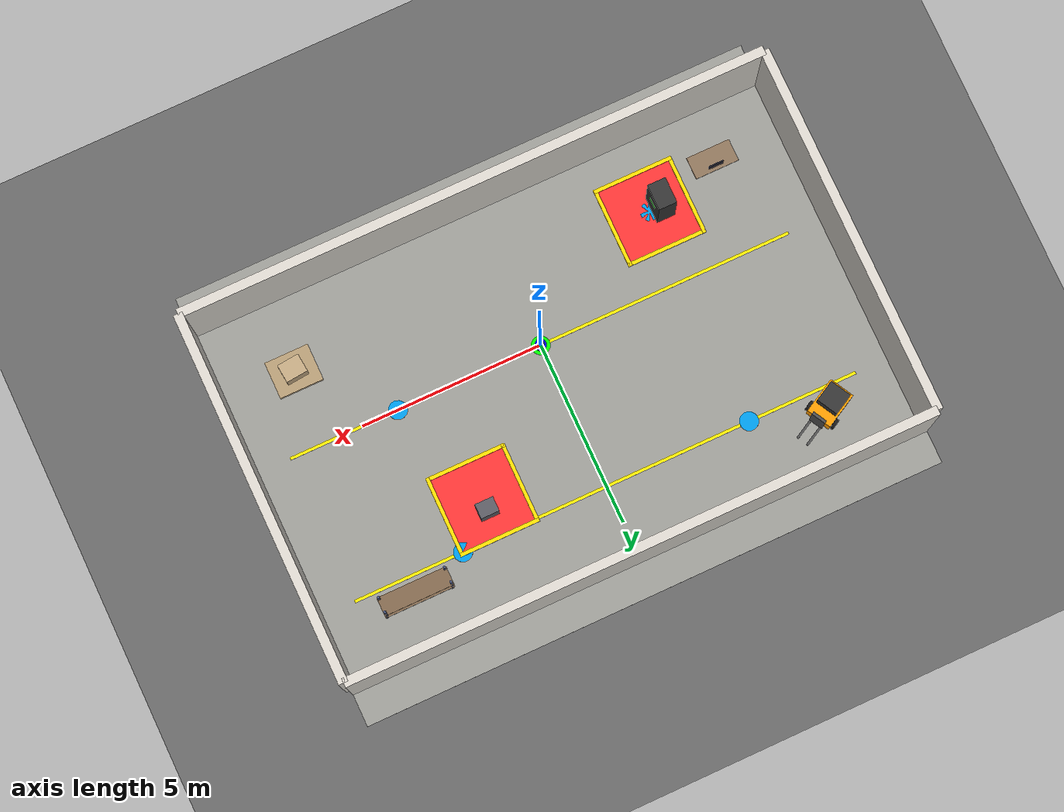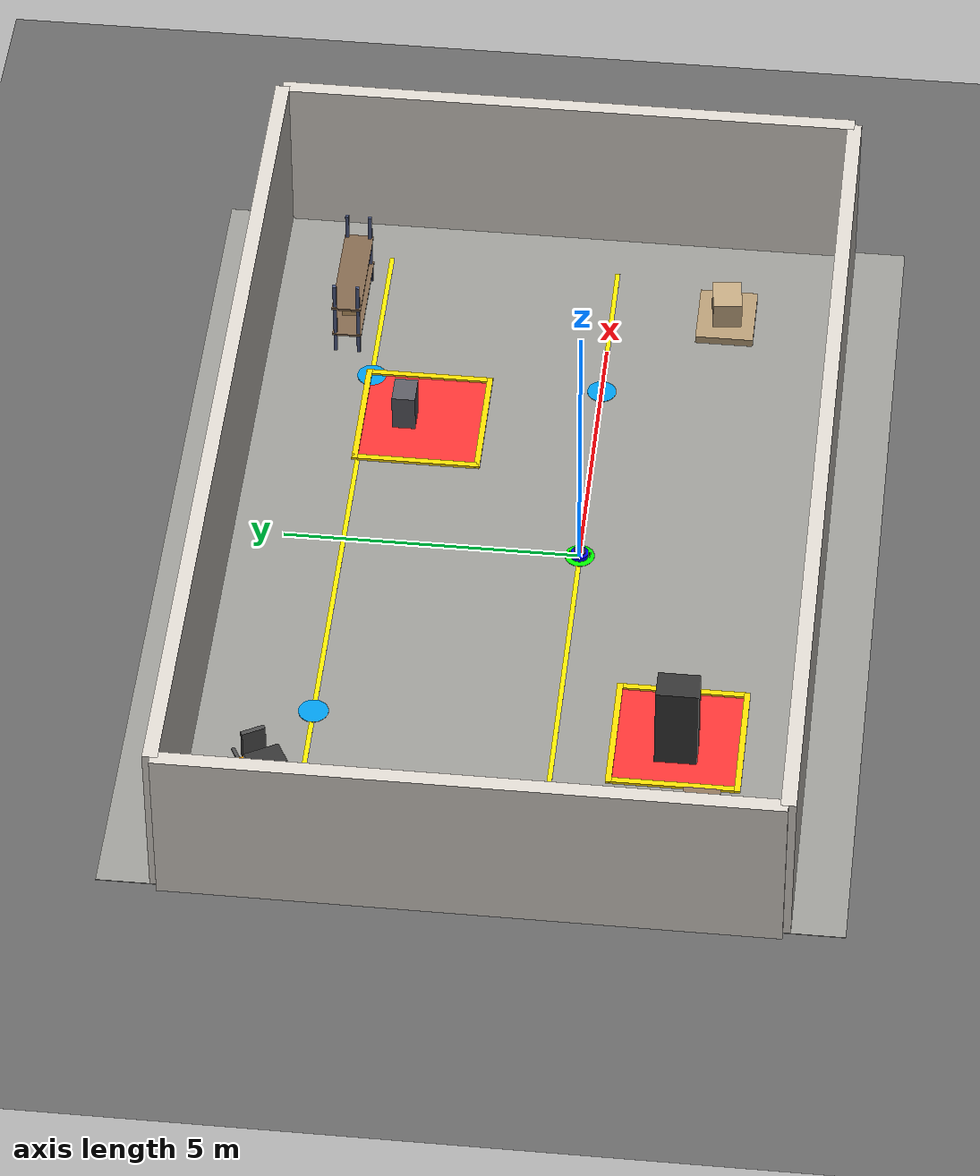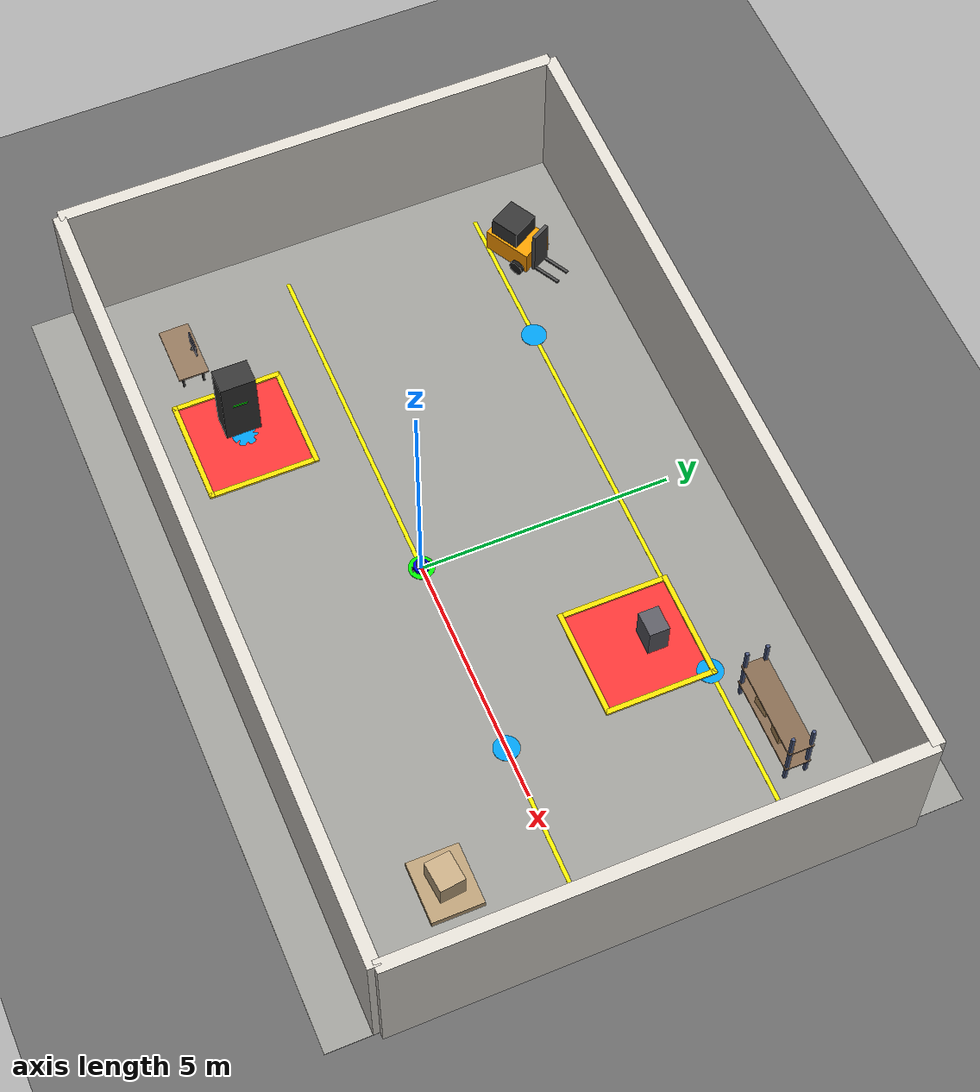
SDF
<?xml version="1.0" ?>
<sdf version="1.8">
  <world name="patrol_world">

    <physics name="1ms" type="ignored">
      <max_step_size>0.001</max_step_size>
      <real_time_factor>1.0</real_time_factor>
    </physics>

    <plugin filename="gz-sim-physics-system" name="gz::sim::systems::Physics"/>
    <plugin filename="gz-sim-user-commands-system" name="gz::sim::systems::UserCommands"/>
    <plugin filename="gz-sim-scene-broadcaster-system" name="gz::sim::systems::SceneBroadcaster"/>

    <!-- Aydınlatma -->
    <light type="directional" name="sun">
      <cast_shadows>true</cast_shadows>
      <pose>0 0 15 0 0 0</pose>
      <diffuse>0.9 0.9 0.85 1</diffuse>
      <specular>0.3 0.3 0.3 1</specular>
      <direction>-0.4 0.2 -0.9</direction>
    </light>

    <light type="point" name="light1">
      <pose>0 2 3.5 0 0 0</pose>
      <diffuse>0.8 0.8 0.7 1</diffuse>
      <attenuation><range>15</range><constant>0.3</constant><linear>0.05</linear></attenuation>
    </light>

    <light type="point" name="light2">
      <pose>4 2 3.5 0 0 0</pose>
      <diffuse>0.8 0.8 0.7 1</diffuse>
      <attenuation><range>15</range><constant>0.3</constant><linear>0.05</linear></attenuation>
    </light>

    <!-- Zemin - Beton -->
    <model name="ground">
      <static>true</static>
      <link name="link">
        <collision name="c"><geometry><plane><normal>0 0 1</normal><size>100 100</size></plane></geometry></collision>
        <visual name="v"><geometry><plane><normal>0 0 1</normal><size>100 100</size></plane></geometry>
          <material><ambient>0.3 0.3 0.3 1</ambient><diffuse>0.4 0.4 0.4 1</diffuse></material></visual>
      </link>
    </model>

    <!-- Depo Zemini -->
    <model name="floor">
      <static>true</static>
      <pose>0 1 0.005 0 0 0</pose>
      <link name="link">
        <visual name="v"><geometry><box><size>16 12 0.01</size></box></geometry>
          <material><ambient>0.5 0.5 0.48 1</ambient><diffuse>0.6 0.6 0.58 1</diffuse></material></visual>
      </link>
    </model>

    <!-- Sarı Zemin Çizgileri -->
    <model name="line1">
      <static>true</static>
      <pose>0 0 0.01 0 0 0</pose>
      <link name="l"><visual name="v"><geometry><box><size>14 0.08 0.01</size></box></geometry>
        <material><ambient>0.9 0.8 0 1</ambient><diffuse>1 0.9 0 1</diffuse></material></visual></link>
    </model>
    <model name="line2">
      <static>true</static>
      <pose>0 4 0.01 0 0 0</pose>
      <link name="l"><visual name="v"><geometry><box><size>14 0.08 0.01</size></box></geometry>
        <material><ambient>0.9 0.8 0 1</ambient><diffuse>1 0.9 0 1</diffuse></material></visual></link>
    </model>

    <!-- Ana Duvarlar -->
    <model name="wall_n">
      <static>true</static>
      <pose>0 6 1.5 0 0 0</pose>
      <link name="link">
        <collision name="c"><geometry><box><size>16 0.25 3</size></box></geometry></collision>
        <visual name="v"><geometry><box><size>16 0.25 3</size></box></geometry>
          <material><ambient>0.75 0.73 0.7 1</ambient><diffuse>0.85 0.83 0.8 1</diffuse></material></visual>
      </link>
    </model>
    <model name="wall_s">
      <static>true</static>
      <pose>0 -4 1.5 0 0 0</pose>
      <link name="link">
        <collision name="c"><geometry><box><size>16 0.25 3</size></box></geometry></collision>
        <visual name="v"><geometry><box><size>16 0.25 3</size></box></geometry>
          <material><ambient>0.75 0.73 0.7 1</ambient><diffuse>0.85 0.83 0.8 1</diffuse></material></visual>
      </link>
    </model>
    <model name="wall_e">
      <static>true</static>
      <pose>8 1 1.5 0 0 0</pose>
      <link name="link">
        <collision name="c"><geometry><box><size>0.25 10 3</size></box></geometry></collision>
        <visual name="v"><geometry><box><size>0.25 10 3</size></box></geometry>
          <material><ambient>0.75 0.73 0.7 1</ambient><diffuse>0.85 0.83 0.8 1</diffuse></material></visual>
      </link>
    </model>
    <model name="wall_w">
      <static>true</static>
      <pose>-8 1 1.5 0 0 0</pose>
      <link name="link">
        <collision name="c"><geometry><box><size>0.25 10 3</size></box></geometry></collision>
        <visual name="v"><geometry><box><size>0.25 10 3</size></box></geometry>
          <material><ambient>0.75 0.73 0.7 1</ambient><diffuse>0.85 0.83 0.8 1</diffuse></material></visual>
      </link>
    </model>

    <!-- Depo Rafları -->
    <model name="shelf1">
      <static>true</static>
      <pose>5.5 4.5 0 0 0 0</pose>
      <link name="link">
        <collision name="c"><pose>0 0 0.75 0 0 0</pose><geometry><box><size>2 0.5 1.5</size></box></geometry></collision>
        <visual name="frame1"><pose>-0.9 -0.2 0.75 0 0 0</pose><geometry><box><size>0.06 0.06 1.5</size></box></geometry>
          <material><ambient>0.3 0.35 0.5 1</ambient></material></visual>
        <visual name="frame2"><pose>0.9 -0.2 0.75 0 0 0</pose><geometry><box><size>0.06 0.06 1.5</size></box></geometry>
          <material><ambient>0.3 0.35 0.5 1</ambient></material></visual>
        <visual name="frame3"><pose>-0.9 0.2 0.75 0 0 0</pose><geometry><box><size>0.06 0.06 1.5</size></box></geometry>
          <material><ambient>0.3 0.35 0.5 1</ambient></material></visual>
        <visual name="frame4"><pose>0.9 0.2 0.75 0 0 0</pose><geometry><box><size>0.06 0.06 1.5</size></box></geometry>
          <material><ambient>0.3 0.35 0.5 1</ambient></material></visual>
        <visual name="plank1"><pose>0 0 0.4 0 0 0</pose><geometry><box><size>1.9 0.5 0.04</size></box></geometry>
          <material><ambient>0.5 0.4 0.3 1</ambient></material></visual>
        <visual name="plank2"><pose>0 0 1.0 0 0 0</pose><geometry><box><size>1.9 0.5 0.04</size></box></geometry>
          <material><ambient>0.5 0.4 0.3 1</ambient></material></visual>
      </link>
    </model>

    <!-- Kutular raf üstünde -->
    <model name="box1">
      <static>true</static>
      <pose>5.2 4.5 0.55 0 0 0.1</pose>
      <link name="l"><visual name="v"><geometry><box><size>0.35 0.3 0.25</size></box></geometry>
        <material><ambient>0.6 0.45 0.25 1</ambient><diffuse>0.75 0.6 0.4 1</diffuse></material></visual></link>
    </model>
    <model name="box2">
      <static>true</static>
      <pose>5.8 4.5 0.55 0 0 -0.05</pose>
      <link name="l"><visual name="v"><geometry><box><size>0.3 0.3 0.25</size></box></geometry>
        <material><ambient>0.55 0.4 0.2 1</ambient><diffuse>0.7 0.55 0.35 1</diffuse></material></visual></link>
    </model>

    <!-- Forklift -->
    <model name="forklift">
      <static>true</static>
      <pose>-6 4.5 0 0 0 0.5</pose>
      <link name="link">
        <collision name="c"><pose>0 0 0.5 0 0 0</pose><geometry><box><size>1.5 0.8 1</size></box></geometry></collision>
        <visual name="body"><pose>0 0 0.35 0 0 0</pose><geometry><box><size>1.0 0.7 0.5</size></box></geometry>
          <material><ambient>0.9 0.5 0 1</ambient><diffuse>1 0.6 0 1</diffuse></material></visual>
        <visual name="cabin"><pose>-0.1 0 0.75 0 0 0</pose><geometry><box><size>0.6 0.6 0.5</size></box></geometry>
          <material><ambient>0.2 0.2 0.2 1</ambient></material></visual>
        <visual name="mast"><pose>0.55 0 0.6 0 0 0</pose><geometry><box><size>0.08 0.4 1.0</size></box></geometry>
          <material><ambient>0.3 0.3 0.3 1</ambient></material></visual>
        <visual name="fork1"><pose>0.85 -0.15 0.12 0 0 0</pose><geometry><box><size>0.6 0.06 0.04</size></box></geometry>
          <material><ambient>0.3 0.3 0.3 1</ambient></material></visual>
        <visual name="fork2"><pose>0.85 0.15 0.12 0 0 0</pose><geometry><box><size>0.6 0.06 0.04</size></box></geometry>
          <material><ambient>0.3 0.3 0.3 1</ambient></material></visual>
        <visual name="w1"><pose>0.3 0.4 0.15 1.57 0 0</pose><geometry><cylinder><radius>0.15</radius><length>0.08</length></cylinder></geometry>
          <material><ambient>0.1 0.1 0.1 1</ambient></material></visual>
        <visual name="w2"><pose>0.3 -0.4 0.15 1.57 0 0</pose><geometry><cylinder><radius>0.15</radius><length>0.08</length></cylinder></geometry>
          <material><ambient>0.1 0.1 0.1 1</ambient></material></visual>
      </link>
    </model>

    <!-- Paletler ve Kutular -->
    <model name="pallet1">
      <static>true</static>
      <pose>6 -2 0.08 0 0 0</pose>
      <link name="l">
        <collision name="c"><geometry><box><size>1.2 1 0.15</size></box></geometry></collision>
        <visual name="v"><geometry><box><size>1.2 1 0.15</size></box></geometry>
          <material><ambient>0.55 0.45 0.3 1</ambient><diffuse>0.7 0.6 0.45 1</diffuse></material></visual>
      </link>
    </model>
    <model name="crate1">
      <static>true</static>
      <pose>6 -2 0.4 0 0 0.1</pose>
      <link name="l">
        <collision name="c"><geometry><box><size>0.6 0.5 0.5</size></box></geometry></collision>
        <visual name="v"><geometry><box><size>0.6 0.5 0.5</size></box></geometry>
          <material><ambient>0.6 0.5 0.35 1</ambient><diffuse>0.75 0.65 0.5 1</diffuse></material></visual>
      </link>
    </model>

    <!-- Güvenlik Masası -->
    <model name="desk">
      <static>true</static>
      <pose>-6 -2.5 0 0 0 0</pose>
      <link name="link">
        <collision name="c"><pose>0 0 0.35 0 0 0</pose><geometry><box><size>1.2 0.6 0.7</size></box></geometry></collision>
        <visual name="top"><pose>0 0 0.38 0 0 0</pose><geometry><box><size>1.2 0.6 0.04</size></box></geometry>
          <material><ambient>0.4 0.3 0.2 1</ambient><diffuse>0.55 0.45 0.35 1</diffuse></material></visual>
        <visual name="leg1"><pose>-0.5 -0.2 0.18 0 0 0</pose><geometry><box><size>0.04 0.04 0.36</size></box></geometry>
          <material><ambient>0.25 0.25 0.25 1</ambient></material></visual>
        <visual name="leg2"><pose>0.5 -0.2 0.18 0 0 0</pose><geometry><box><size>0.04 0.04 0.36</size></box></geometry>
          <material><ambient>0.25 0.25 0.25 1</ambient></material></visual>
        <visual name="leg3"><pose>-0.5 0.2 0.18 0 0 0</pose><geometry><box><size>0.04 0.04 0.36</size></box></geometry>
          <material><ambient>0.25 0.25 0.25 1</ambient></material></visual>
        <visual name="leg4"><pose>0.5 0.2 0.18 0 0 0</pose><geometry><box><size>0.04 0.04 0.36</size></box></geometry>
          <material><ambient>0.25 0.25 0.25 1</ambient></material></visual>
      </link>
    </model>

    <!-- Monitör -->
    <model name="monitor">
      <static>true</static>
      <pose>-6 -2.3 0.55 0 0 0</pose>
      <link name="l">
        <visual name="screen"><geometry><box><size>0.4 0.03 0.28</size></box></geometry>
          <material><ambient>0.1 0.1 0.1 1</ambient><diffuse>0.15 0.15 0.2 1</diffuse></material></visual>
        <visual name="stand"><pose>0 -0.02 -0.18 0 0 0</pose><geometry><cylinder><radius>0.04</radius><length>0.08</length></cylinder></geometry>
          <material><ambient>0.2 0.2 0.2 1</ambient></material></visual>
      </link>
    </model>

    <!-- YASAK BÖLGE A - Kasa Odası -->
    <model name="zone_a_floor">
      <static>true</static>
      <pose>3 3 0.01 0 0 0</pose>
      <link name="l"><visual name="v"><geometry><box><size>2 2 0.02</size></box></geometry>
        <material><ambient>0.9 0.1 0.1 1</ambient><diffuse>1 0.2 0.2 1</diffuse></material></visual></link>
    </model>
    <model name="zone_a_border1">
      <static>true</static>
      <pose>3 4.05 0.03 0 0 0</pose>
      <link name="l"><visual name="v"><geometry><box><size>2.2 0.1 0.06</size></box></geometry>
        <material><ambient>0.9 0.75 0 1</ambient><diffuse>1 0.85 0 1</diffuse></material></visual></link>
    </model>
    <model name="zone_a_border2">
      <static>true</static>
      <pose>3 1.95 0.03 0 0 0</pose>
      <link name="l"><visual name="v"><geometry><box><size>2.2 0.1 0.06</size></box></geometry>
        <material><ambient>0.9 0.75 0 1</ambient><diffuse>1 0.85 0 1</diffuse></material></visual></link>
    </model>
    <model name="zone_a_border3">
      <static>true</static>
      <pose>4.05 3 0.03 0 0 0</pose>
      <link name="l"><visual name="v"><geometry><box><size>0.1 2.2 0.06</size></box></geometry>
        <material><ambient>0.9 0.75 0 1</ambient><diffuse>1 0.85 0 1</diffuse></material></visual></link>
    </model>
    <model name="zone_a_border4">
      <static>true</static>
      <pose>1.95 3 0.03 0 0 0</pose>
      <link name="l"><visual name="v"><geometry><box><size>0.1 2.2 0.06</size></box></geometry>
        <material><ambient>0.9 0.75 0 1</ambient><diffuse>1 0.85 0 1</diffuse></material></visual></link>
    </model>

    <!-- Kasa -->
    <model name="safe">
      <static>true</static>
      <pose>3 3.3 0.35 0 0 0</pose>
      <link name="l">
        <collision name="c"><geometry><box><size>0.5 0.4 0.7</size></box></geometry></collision>
        <visual name="v"><geometry><box><size>0.5 0.4 0.7</size></box></geometry>
          <material><ambient>0.25 0.25 0.27 1</ambient><diffuse>0.35 0.35 0.38 1</diffuse><specular>0.4 0.4 0.4 1</specular></material></visual>
      </link>
    </model>

    <!-- YASAK BÖLGE B - Sunucu Odası -->
    <model name="zone_b_floor">
      <static>true</static>
      <pose>-4 -2 0.01 0 0 0</pose>
      <link name="l"><visual name="v"><geometry><box><size>2 2 0.02</size></box></geometry>
        <material><ambient>0.9 0.1 0.1 1</ambient><diffuse>1 0.2 0.2 1</diffuse></material></visual></link>
    </model>
    <model name="zone_b_border1">
      <static>true</static>
      <pose>-4 -0.95 0.03 0 0 0</pose>
      <link name="l"><visual name="v"><geometry><box><size>2.2 0.1 0.06</size></box></geometry>
        <material><ambient>0.9 0.75 0 1</ambient><diffuse>1 0.85 0 1</diffuse></material></visual></link>
    </model>
    <model name="zone_b_border2">
      <static>true</static>
      <pose>-4 -3.05 0.03 0 0 0</pose>
      <link name="l"><visual name="v"><geometry><box><size>2.2 0.1 0.06</size></box></geometry>
        <material><ambient>0.9 0.75 0 1</ambient><diffuse>1 0.85 0 1</diffuse></material></visual></link>
    </model>
    <model name="zone_b_border3">
      <static>true</static>
      <pose>-2.95 -2 0.03 0 0 0</pose>
      <link name="l"><visual name="v"><geometry><box><size>0.1 2.2 0.06</size></box></geometry>
        <material><ambient>0.9 0.75 0 1</ambient><diffuse>1 0.85 0 1</diffuse></material></visual></link>
    </model>
    <model name="zone_b_border4">
      <static>true</static>
      <pose>-5.05 -2 0.03 0 0 0</pose>
      <link name="l"><visual name="v"><geometry><box><size>0.1 2.2 0.06</size></box></geometry>
        <material><ambient>0.9 0.75 0 1</ambient><diffuse>1 0.85 0 1</diffuse></material></visual></link>
    </model>

    <!-- Server Rack -->
    <model name="server">
      <static>true</static>
      <pose>-4.3 -2 0.8 0 0 0</pose>
      <link name="l">
        <collision name="c"><geometry><box><size>0.5 0.7 1.6</size></box></geometry></collision>
        <visual name="v"><geometry><box><size>0.5 0.7 1.6</size></box></geometry>
          <material><ambient>0.15 0.15 0.15 1</ambient><diffuse>0.2 0.2 0.2 1</diffuse></material></visual>
        <visual name="led"><pose>0.26 0 0.2 0 0 0</pose><geometry><box><size>0.01 0.3 0.04</size></box></geometry>
          <material><ambient>0 0.8 0 1</ambient><diffuse>0 1 0 1</diffuse></material></visual>
      </link>
    </model>

    <!-- Waypoints -->
    <model name="wp1"><static>true</static><pose>0 0 0.01 0 0 0</pose>
      <link name="l"><visual name="v"><geometry><cylinder><radius>0.25</radius><length>0.02</length></cylinder></geometry>
        <material><ambient>0 0.8 0 1</ambient><diffuse>0 1 0 1</diffuse></material></visual></link></model>
    <model name="wp2"><static>true</static><pose>4 0 0.01 0 0 0</pose>
      <link name="l"><visual name="v"><geometry><cylinder><radius>0.25</radius><length>0.02</length></cylinder></geometry>
        <material><ambient>0 0.6 0.9 1</ambient></material></visual></link></model>
    <model name="wp3"><static>true</static><pose>4 4 0.01 0 0 0</pose>
      <link name="l"><visual name="v"><geometry><cylinder><radius>0.25</radius><length>0.02</length></cylinder></geometry>
        <material><ambient>0 0.6 0.9 1</ambient></material></visual></link></model>
    <model name="wp4"><static>true</static><pose>-4 4 0.01 0 0 0</pose>
      <link name="l"><visual name="v"><geometry><cylinder><radius>0.25</radius><length>0.02</length></cylinder></geometry>
        <material><ambient>0 0.6 0.9 1</ambient></material></visual></link></model>
    <model name="wp5"><static>true</static><pose>-4 -2 0.01 0 0 0</pose>
      <link name="l"><visual name="v"><geometry><cylinder><radius>0.25</radius><length>0.02</length></cylinder></geometry>
        <material><ambient>0 0.6 0.9 1</ambient></material></visual></link></model>

    <!-- ROBOT - Aynı kalacak -->
    <model name="patrol_robot">
      <pose>0 0 0.05 0 0 0</pose>

      <link name="base_link">
        <inertial>
          <mass>5.0</mass>
          <inertia><ixx>0.1</ixx><iyy>0.1</iyy><izz>0.1</izz></inertia>
        </inertial>
        <collision name="c">
          <geometry><cylinder><radius>0.15</radius><length>0.1</length></cylinder></geometry>
        </collision>
        <visual name="v">
          <geometry><cylinder><radius>0.15</radius><length>0.1</length></cylinder></geometry>
          <material><ambient>0 0 0.8 1</ambient><diffuse>0 0 1 1</diffuse></material>
        </visual>
        <visual name="top">
          <pose>0 0 0.08 0 0 0</pose>
          <geometry><cylinder><radius>0.1</radius><length>0.05</length></cylinder></geometry>
          <material><ambient>0.1 0.1 0.2 1</ambient><diffuse>0.15 0.15 0.3 1</diffuse></material>
        </visual>
        <visual name="light">
          <pose>0 0 0.12 0 0 0</pose>
          <geometry><cylinder><radius>0.02</radius><length>0.03</length></cylinder></geometry>
          <material><ambient>0 0.5 1 1</ambient><diffuse>0 0.7 1 1</diffuse></material>
        </visual>
      </link>

      <link name="left_wheel">
        <pose>0 0.17 0 -1.5707 0 0</pose>
        <inertial><mass>0.5</mass><inertia><ixx>0.001</ixx><iyy>0.001</iyy><izz>0.001</izz></inertia></inertial>
        <collision name="c">
          <geometry><cylinder><radius>0.05</radius><length>0.02</length></cylinder></geometry>
          <surface><friction><ode><mu>1</mu><mu2>1</mu2></ode></friction></surface>
        </collision>
        <visual name="v">
          <geometry><cylinder><radius>0.05</radius><length>0.02</length></cylinder></geometry>
          <material><ambient>0.1 0.1 0.1 1</ambient></material>
        </visual>
      </link>

      <link name="right_wheel">
        <pose>0 -0.17 0 -1.5707 0 0</pose>
        <inertial><mass>0.5</mass><inertia><ixx>0.001</ixx><iyy>0.001</iyy><izz>0.001</izz></inertia></inertial>
        <collision name="c">
          <geometry><cylinder><radius>0.05</radius><length>0.02</length></cylinder></geometry>
          <surface><friction><ode><mu>1</mu><mu2>1</mu2></ode></friction></surface>
        </collision>
        <visual name="v">
          <geometry><cylinder><radius>0.05</radius><length>0.02</length></cylinder></geometry>
          <material><ambient>0.1 0.1 0.1 1</ambient></material>
        </visual>
      </link>

      <link name="caster">
        <pose>-0.1 0 -0.025 0 0 0</pose>
        <inertial><mass>0.1</mass><inertia><ixx>0.0001</ixx><iyy>0.0001</iyy><izz>0.0001</izz></inertia></inertial>
        <collision name="c">
          <geometry><sphere><radius>0.025</radius></sphere></geometry>
          <surface><friction><ode><mu>0</mu><mu2>0</mu2></ode></friction></surface>
        </collision>
        <visual name="v">
          <geometry><sphere><radius>0.025</radius></sphere></geometry>
          <material><ambient>0.1 0.1 0.1 1</ambient></material>
        </visual>
      </link>

      <joint name="left_wheel_joint" type="revolute">
        <parent>base_link</parent><child>left_wheel</child>
        <axis><xyz>0 0 1</xyz></axis>
      </joint>
      <joint name="right_wheel_joint" type="revolute">
        <parent>base_link</parent><child>right_wheel</child>
        <axis><xyz>0 0 1</xyz></axis>
      </joint>
      <joint name="caster_joint" type="ball">
        <parent>base_link</parent><child>caster</child>
      </joint>

      <plugin filename="gz-sim-diff-drive-system" name="gz::sim::systems::DiffDrive">
        <left_joint>left_wheel_joint</left_joint>
        <right_joint>right_wheel_joint</right_joint>
        <wheel_separation>0.34</wheel_separation>
        <wheel_radius>0.05</wheel_radius>
        <odom_publish_frequency>50</odom_publish_frequency>
        <topic>cmd_vel</topic>
        <odom_topic>odom</odom_topic>
      </plugin>
    </model>

  </world>
</sdf>
